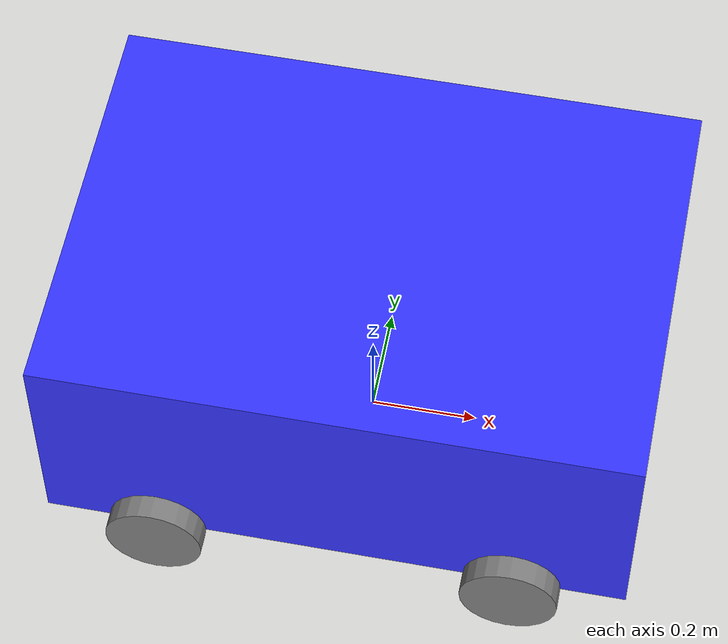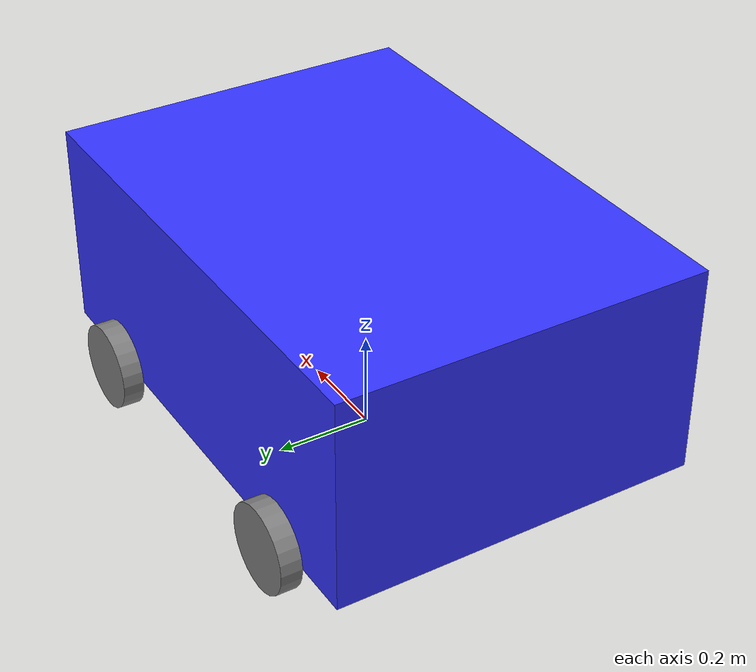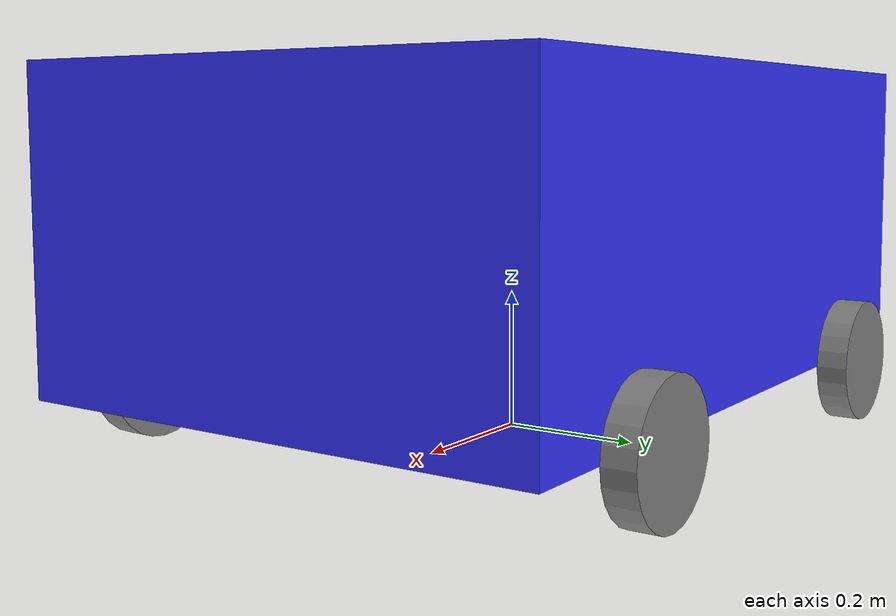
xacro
<?xml version="1.0"?>
<robot name="sr_robot" xmlns:xacro="http://www.ros.org/wiki/xacro">

    <xacro:include filename="inertial_macros.xacro" />

    <material name="blue">
        <color rgba="0.2 0.2 1 1"/>
    </material>

    <material name="grey">
        <color rgba="0.5 0.5 0.5 1"/>
    </material>

    <xacro:property name="chassis_length" value="1.08"/>
    <xacro:property name="chassis_width" value="0.77"/>
    <xacro:property name="chassis_height" value="0.44"/>
    <xacro:property name="wheel_radius" value="0.09" />
    <xacro:property name="wheel_length" value="0.044" />

<!-- base footprint -->
    <link name="base_footprint" />

    <joint name="base_joint" type="fixed">
        <parent link="base_footprint" />
        <child link="base_link" />
        <origin xyz="0 0 0.09" rpy="0 0 0"/>
    </joint>

<!-- 機器人方框 -->
    <link name="base_link">
        <visual>
            <geometry>
                <box size="${chassis_length} ${chassis_width} ${chassis_height}" />
            </geometry>
            <origin xyz="0 0 0.22" rpy="0 0 0" />
            <material name="blue" />
        </visual>
        <collision>
            <origin xyz="0 0 0.22" rpy="0 0 0" />
            <geometry>
                <box size="${chassis_length} ${chassis_width} ${chassis_height}" />
            </geometry>
        </collision>
        <xacro:inertial_box mass="5.0" l="${chassis_length}" w="${chassis_width}" h="${chassis_height}" xyz="0 0 0.22" rpy="0 0 0" />
    </link>

<!-- left wheel -->

    <!-- front -->
    <link name="left_front_wheel">
        <visual>
            <geometry>
                <cylinder radius="${wheel_radius}" length="${wheel_length}" />
            </geometry>
            <origin xyz="0 0 0" rpy="${pi / 2.0} 0 0" />
            <material name="grey" />
        </visual>
        <collision>
            <origin xyz="0 0 0" rpy="${pi / 2.0} 0 0" />
            <geometry>
                <cylinder radius="${wheel_radius}" length="${wheel_length}" />
            </geometry>
        </collision>
        <xacro:inertial_cylinder mass="1.0" r="${wheel_radius}" h="${wheel_length}" xyz="0 0 0" rpy="${pi / 2.0} 0 0" />
    </link>

    <joint name="left_front_wheel_joint" type="continuous">
        <parent link="base_link" />
        <child link="left_front_wheel" />
        <origin xyz="0.33 0.407 0" rpy="0 0 0" />
        <axis xyz="0 1 0" />
    </joint>

    <!-- back -->
    <link name="left_back_wheel">
        <visual>
            <geometry>
                <cylinder radius="${wheel_radius}" length="${wheel_length}" />
            </geometry>
            <origin xyz="0 0 0" rpy="${pi / 2.0} 0 0" />
            <material name="grey" />
        </visual>
        <collision>
            <origin xyz="0 0 0" rpy="${pi / 2.0} 0 0" />
            <geometry>
                <cylinder radius="${wheel_radius}" length="${wheel_length}" />
            </geometry>
        </collision>
        <xacro:inertial_cylinder mass="1.0" r="${wheel_radius}" h="${wheel_length}" xyz="0 0 0" rpy="${pi / 2.0} 0 0" />
    </link>

    <joint name="left_back_wheel_joint" type="continuous">
        <parent link="base_link" />
        <child link="left_back_wheel" />
        <origin xyz="-0.33 0.407 0" rpy="0 0 0" />
        <axis xyz="0 1 0" />
    </joint>

<!-- right wheel -->

    <!-- front -->
    <link name="right_front_wheel">
        <visual>
            <geometry>
                <cylinder radius="${wheel_radius}" length="${wheel_length}" />
            </geometry>
            <origin xyz="0 0 0" rpy="${pi / 2.0} 0 0" />
            <material name="grey" />
        </visual>
        <collision>
            <origin xyz="0 0 0" rpy="${pi / 2.0} 0 0" />
            <geometry>
                <cylinder radius="${wheel_radius}" length="${wheel_length}" />
            </geometry>
        </collision>
        <xacro:inertial_cylinder mass="1.0" r="${wheel_radius}" h="${wheel_length}" xyz="0 0 0" rpy="${pi / 2.0} 0 0" />
    </link>

    <joint name="right_front_wheel_joint" type="continuous">
        <parent link="base_link" />
        <child link="right_front_wheel" />
        <origin xyz="0.33 -0.407 0" rpy="0 0 0" />
        <axis xyz="0 1 0" />
    </joint>

    <!-- back -->
    <link name="right_back_wheel">
        <visual>
            <geometry>
                <cylinder radius="${wheel_radius}" length="${wheel_length}" />
            </geometry>
            <origin xyz="0 0 0" rpy="${pi / 2.0} 0 0" />
            <material name="grey" />
        </visual>
        <collision>
            <origin xyz="0 0 0" rpy="${pi / 2.0} 0 0" />
            <geometry>
                <cylinder radius="${wheel_radius}" length="${wheel_length}" />
            </geometry>
        </collision>
        <xacro:inertial_cylinder mass="1.0" r="${wheel_radius}" h="${wheel_length}" xyz="0 0 0" rpy="${pi / 2.0} 0 0" />
    </link>

    <joint name="right_back_wheel_joint" type="continuous">
        <parent link="base_link" />
        <child link="right_back_wheel" />
        <origin xyz="-0.33 -0.407 0" rpy="0 0 0" />
        <axis xyz="0 1 0" />
    </joint>
</robot>

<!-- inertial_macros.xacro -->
<robot name="sr_robot" xmlns:xacro="http://www.ros.org/wiki/xacro">

    <xacro:macro name="inertial_box" params="mass l w h xyz rpy">
        <inertial>
            <origin xyz="${xyz}" rpy="${rpy}"/>
            <mass value="${mass}" />
            <inertia ixx="${(1/12) * mass * (h*h+l*l)}" ixy="0.0" ixz="0.0"
                    iyy="${(1/12) * mass * (w*w+l*l)}" iyz="0.0"
                    izz="${(1/12) * mass * (w*w+h*h)}" />
        </inertial>
    </xacro:macro>

    <xacro:macro name="inertial_cylinder" params="mass r h xyz rpy">
        <inertial>
            <origin xyz="${xyz}" rpy="${rpy}"/>
            <mass value="${mass}" />
            <inertia ixx="${(1/12) * mass * (3*r*r + h*h)}" ixy="0.0" ixz="0.0"
                    iyy="${(1/12) * mass * (3*r*r + h*h)}" iyz="0.0"
                    izz="${(1/2) * mass * (r*r)}" />
        </inertial>
    </xacro:macro>

</robot>
